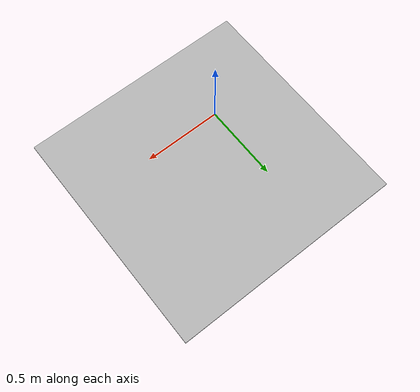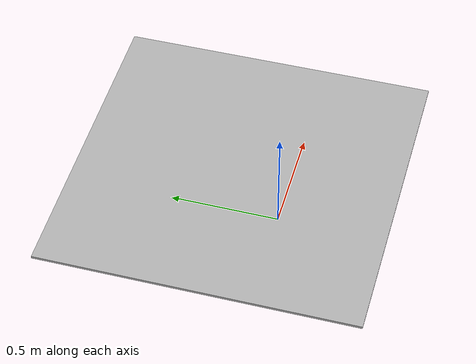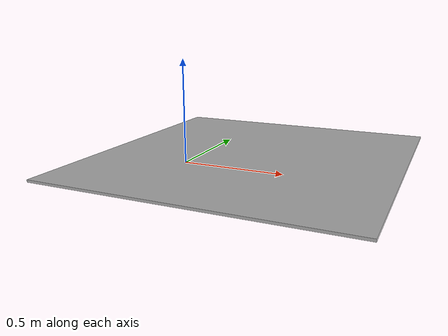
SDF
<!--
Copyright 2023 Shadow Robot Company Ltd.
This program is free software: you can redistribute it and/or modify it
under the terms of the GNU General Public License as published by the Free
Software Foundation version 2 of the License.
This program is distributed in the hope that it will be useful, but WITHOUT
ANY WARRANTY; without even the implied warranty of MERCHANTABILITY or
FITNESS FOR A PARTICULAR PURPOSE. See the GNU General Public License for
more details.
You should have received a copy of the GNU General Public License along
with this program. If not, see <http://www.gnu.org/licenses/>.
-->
<?xml version="1.0" ?>

<sdf version="1.4">
  <model name="shadow_table_2017_full_simplified">
    <static>true</static>
    <link name="link">
      <inertial>
        <mass>20</mass>
      </inertial>
      <collision name="collision">
        <pose>0.0 0.0 0.0 0.0 0.0 0.0</pose>
        <geometry>
          <mesh>
            <uri>model://shadow_table_2017_full_simplified/meshes/shadow_table_2017_full_simplified.stl</uri>
          </mesh>
        </geometry>
      </collision>
      <visual name="visual">
        <pose>0.0 0.0 0.0 0.0 0.0 0.0</pose>
        <geometry>
          <mesh>
            <uri>model://shadow_table_2017_full_simplified/meshes/shadow_table_2017_full_simplified.stl</uri>
          </mesh>
        </geometry>
      </visual>
    </link>
  </model>
</sdf>
